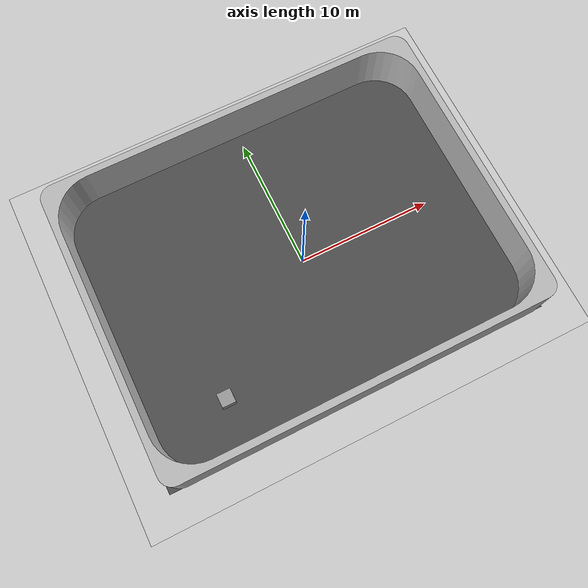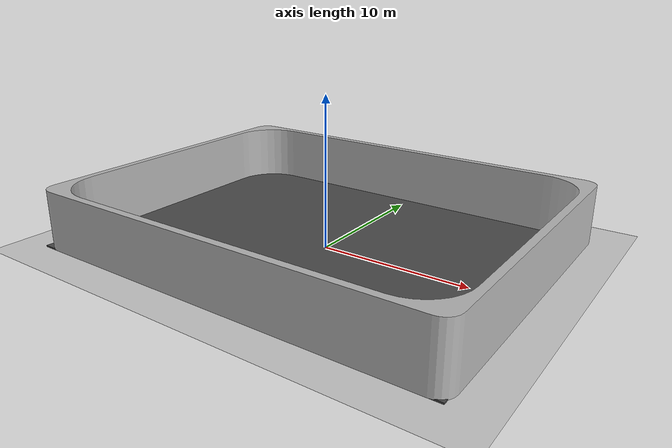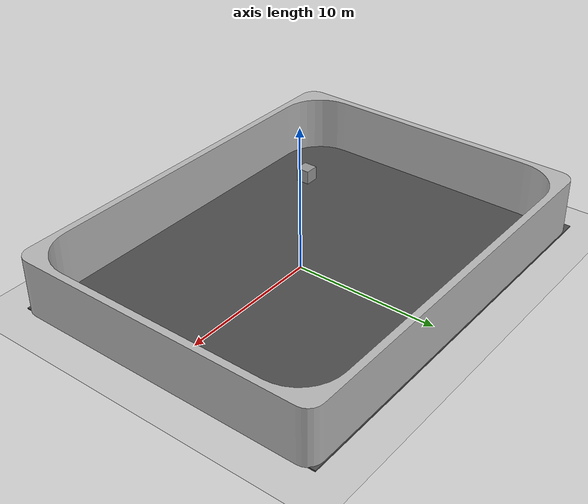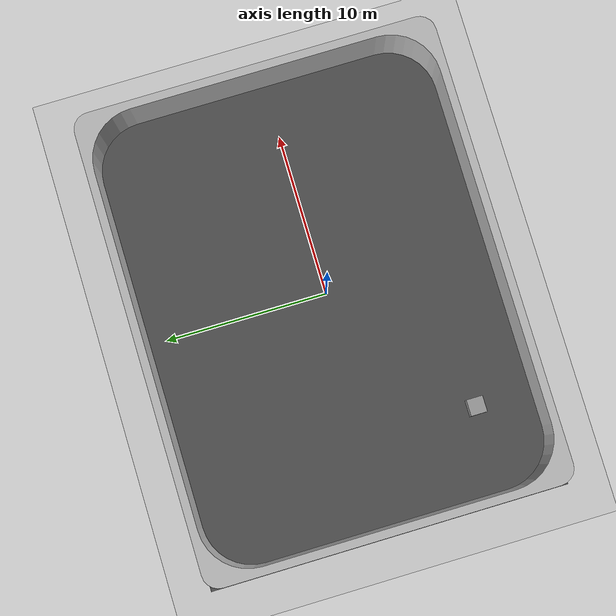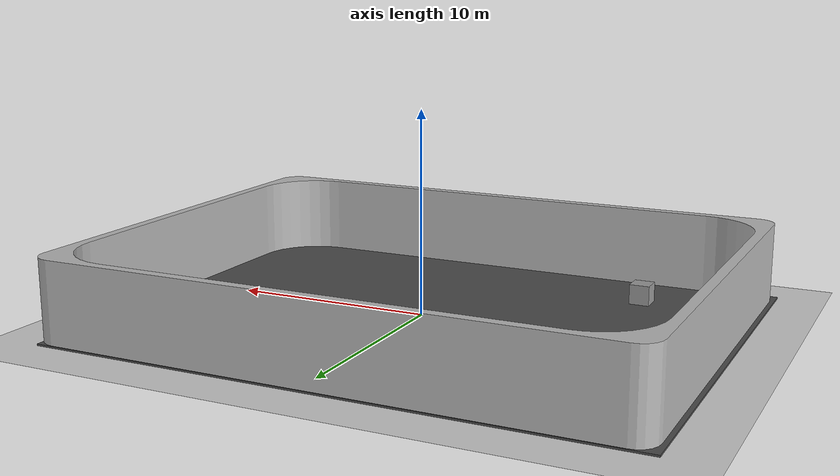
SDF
<sdf version="1.6">
 <world name="default">
  <light name="sun" type="directional">
   <pose>0 0 100 0 -0 0</pose>
   <diffuse>0.8 0.8 0.8 1</diffuse>
   <specular>0.1 0.1 0.1 1</specular>
   <attenuation>
    <range>1000</range>
    <constant>0.9</constant>
    <linear>0.01</linear>
    <quadratic>0.001</quadratic>
   </attenuation>
   <direction>-0.5 0.5 -1</direction>
  </light>
  <model name="ground_plane">
   <static>1</static>
   <link name="link">
    <collision name="collision">
     <geometry><plane><normal>0 0 1</normal><size>100 100</size></plane></geometry>
     <surface><friction><ode><mu>100</mu><mu2>50</mu2></ode></friction></surface>
    </collision>
    <visual name="visual">
     <cast_shadows>0</cast_shadows>
     <geometry><plane><normal>0 0 1</normal><size>100 100</size></plane></geometry>
     <material>
      <script><uri>file://media/materials/scripts/gazebo.material</uri><name>Gazebo/Grey</name></script>
     </material>
    </visual>
   </link>
  </model>
  <gravity>0 0 -9.8</gravity>
  <magnetic_field>6e-06 2.3e-05 -4.2e-05</magnetic_field>
  <atmosphere type="adiabatic"/>
  <physics name="default_physics" default="0" type="ode">
   <max_step_size>0.001</max_step_size>
   <real_time_factor>1</real_time_factor>
   <real_time_update_rate>1000</real_time_update_rate>
  </physics>
  <scene><ambient>0.4 0.4 0.4 1</ambient><background>0.7 0.7 0.7 1</background><shadows>1</shadows></scene>
  <spherical_coordinates>
   <surface_model>EARTH_WGS84</surface_model>
   <latitude_deg>0</latitude_deg>
   <longitude_deg>0</longitude_deg>
   <elevation>0</elevation>
   <heading_deg>0</heading_deg>
  </spherical_coordinates>
  <model name="asphalt_plane">
   <static>1</static>
   <link name="link">
    <collision name="collision"><geometry><box><size>28.54 22.04 0.1</size></box></geometry></collision>
    <visual name="visual">
     <cast_shadows>0</cast_shadows>
     <geometry><box><size>28.54 22.04 0.1</size></box></geometry>
     <material>
      <script>
       <uri>model://asphalt_plane/materials/scripts</uri>
       <uri>model://asphalt_plane/materials/textures</uri>
       <name>vrc/asphalt</name>
      </script>
     </material>
    </visual>
   </link>
   <pose>-0.719505 0.551979 0 0 -0 0</pose>
  </model>
  <model name="yard">
   <pose>-0.5 0.5 0 1.5708 -0 1.5708</pose>
   <static>1</static>
   <link name="body">
    <collision name="collision">
     <geometry><mesh><uri>model://yard/yard.stl</uri><scale>0.1 0.1 0.1</scale></mesh></geometry>
    </collision>
    <visual name="visual">
     <geometry><mesh><uri>model://yard/yard.stl</uri><scale>0.1 0.1 0.1</scale></mesh></geometry>
    </visual>
   </link>
  </model>
  <audio><device>default</device></audio>
  <model name="unit_box_clone">
   <pose>-9.02989 -6.55585 0.549995 1e-05 0 3.5e-05</pose>
   <link name="link">
    <inertial>
     <mass>1</mass>
     <inertia>
      <ixx>0.166667</ixx>
      <ixy>0</ixy>
      <ixz>0</ixz>
      <iyy>0.166667</iyy>
      <iyz>0</iyz>
      <izz>0.166667</izz>
     </inertia>
    </inertial>
    <collision name="collision"><geometry><box><size>1 1 1</size></box></geometry></collision>
    <visual name="visual">
     <geometry><box><size>1 1 1</size></box></geometry>
     <material>
      <script><name>Gazebo/Grey</name><uri>file://media/materials/scripts/gazebo.material</uri></script>
     </material>
    </visual>
   </link>
  </model>
 </world>
</sdf>
